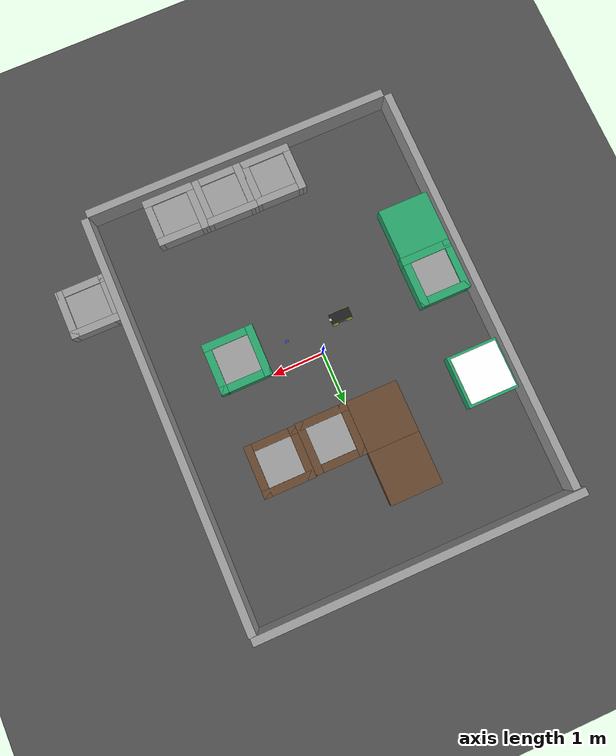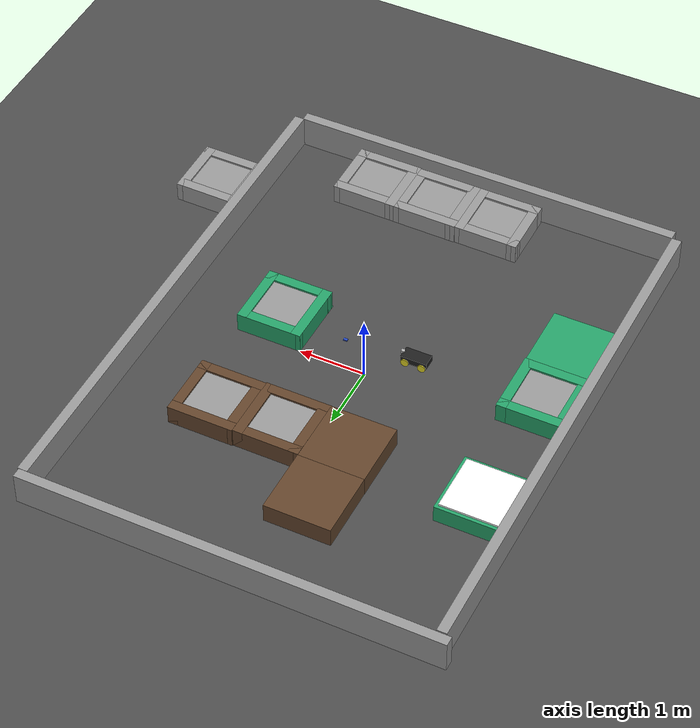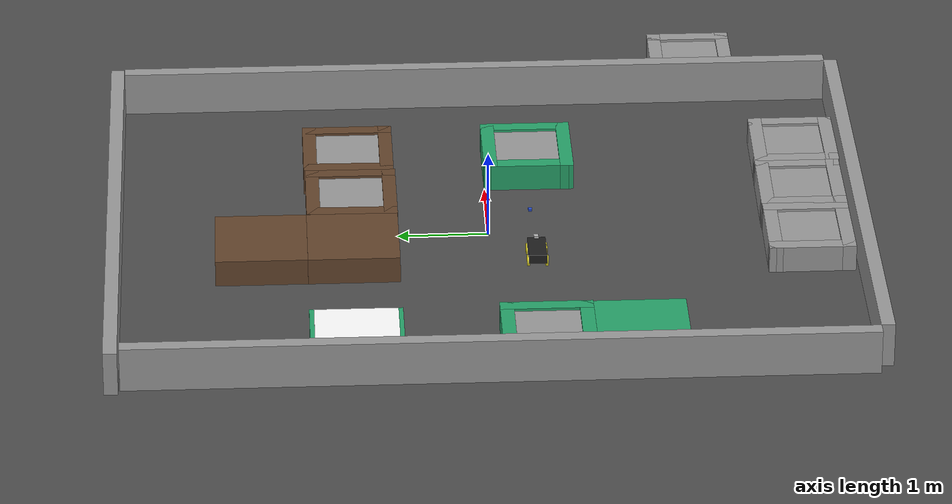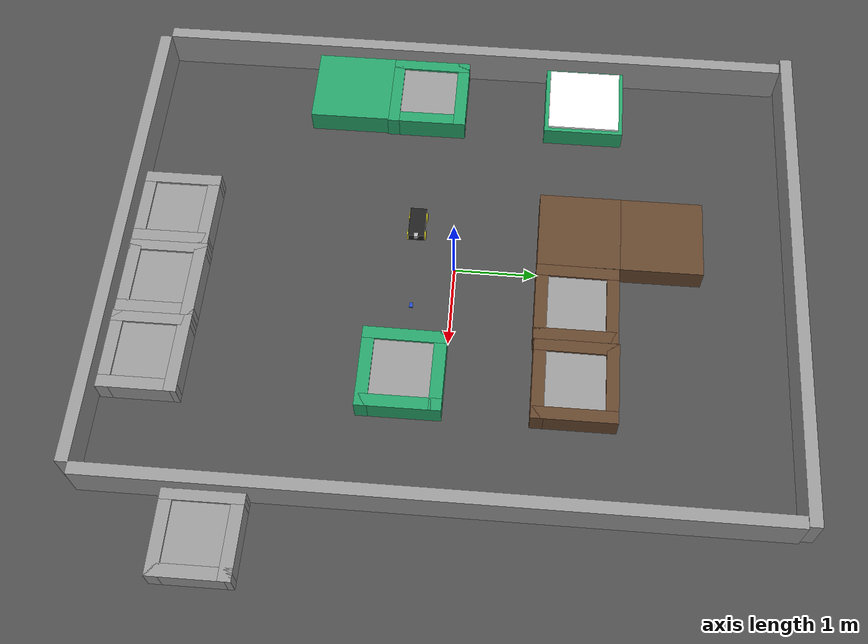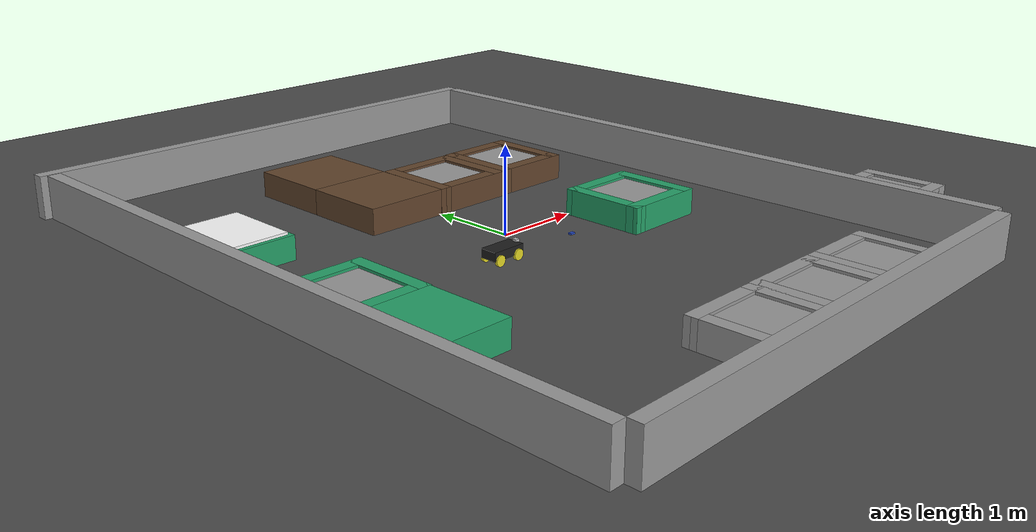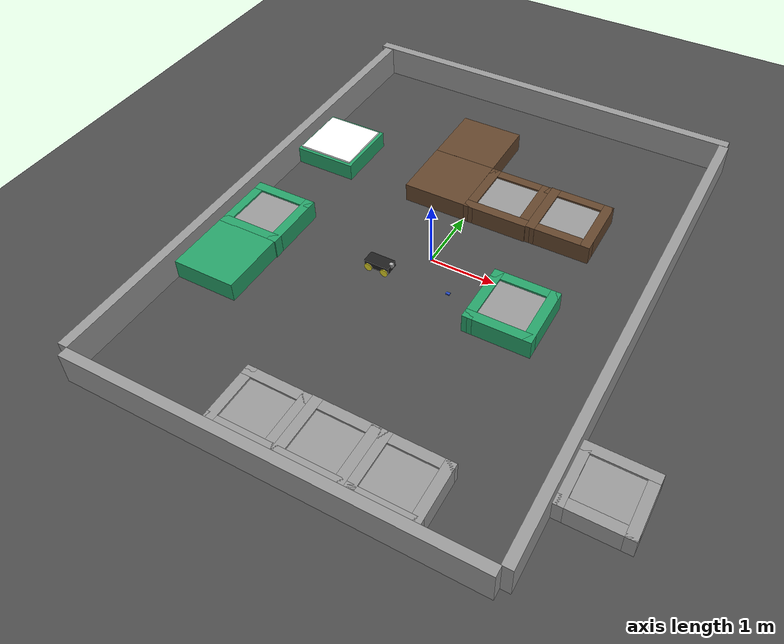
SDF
<sdf version="1.7">
 <world name="default">
  <model name="ground_plane">
   <static>1</static>
   <link name="link">
    <collision name="collision">
     <geometry><plane><normal>0 0 1</normal><size>100 100</size></plane></geometry>
    </collision>
    <visual name="visual">
     <cast_shadows>0</cast_shadows>
     <geometry><plane><normal>0 0 1</normal><size>100 100</size></plane></geometry>
     <material>
      <script><uri>file://media/materials/scripts/gazebo.material</uri><name>Gazebo/DarkGray</name></script>
     </material>
    </visual>
   </link>
  </model>
  <model name="RoverCamera">
   <frame name="rover::__model__" attached_to="rover::chassis">
    <pose relative_to="__model__">0 0 0 0 -0 0</pose>
   </frame>
   <static>0</static>
   <link name="rover::chassis">
    <inertial>
     <mass>2</mass>
     <inertia><ixx>1</ixx><ixy>0</ixy><ixz>0</ixz><iyy>1</iyy><iyz>0</iyz><izz>1</izz></inertia>
    </inertial>
    <collision name="collision"><geometry><box><size>0.4 0.2 0.1</size></box></geometry></collision>
    <visual name="visual">
     <geometry><box><size>0.4 0.2 0.1</size></box></geometry>
     <material>
      <script><uri>file://media/materials/scripts/gazebo.material</uri><name>Gazebo/FlatBlack</name></script>
     </material>
    </visual>
    <pose relative_to="rover::__model__">0 0 0 0 -0 0</pose>
   </link>
   <link name="rover::left_wheel">
    <pose relative_to="rover::__model__">0.13 0.1 -0.05 1.57 -0 0</pose>
    <inertial>
     <mass>0.2</mass>
     <inertia><ixx>1</ixx><ixy>0</ixy><ixz>0</ixz><iyy>1</iyy><iyz>0</iyz><izz>1</izz></inertia>
    </inertial>
    <collision name="collision">
     <geometry><cylinder><radius>0.06</radius><length>0.03</length></cylinder></geometry>
    </collision>
    <visual name="visual">
     <geometry><cylinder><radius>0.06</radius><length>0.03</length></cylinder></geometry>
     <material>
      <script><uri>file://media/materials/scripts/gazebo.material</uri><name>Gazebo/DarkYellow</name></script>
     </material>
    </visual>
   </link>
   <link name="rover::left_wheel2">
    <pose relative_to="rover::__model__">-0.13 0.1 -0.05 1.57 -0 0</pose>
    <inertial>
     <mass>0.2</mass>
     <inertia><ixx>1</ixx><ixy>0</ixy><ixz>0</ixz><iyy>1</iyy><iyz>0</iyz><izz>1</izz></inertia>
    </inertial>
    <collision name="collision">
     <geometry><cylinder><radius>0.06</radius><length>0.03</length></cylinder></geometry>
    </collision>
    <visual name="visual">
     <geometry><cylinder><radius>0.06</radius><length>0.03</length></cylinder></geometry>
     <material>
      <script><uri>file://media/materials/scripts/gazebo.material</uri><name>Gazebo/DarkYellow</name></script>
     </material>
    </visual>
   </link>
   <link name="rover::right_wheel">
    <pose relative_to="rover::__model__">0.13 -0.1 -0.05 1.57 -0 0</pose>
    <inertial>
     <mass>0.2</mass>
     <inertia><ixx>1</ixx><ixy>0</ixy><ixz>0</ixz><iyy>1</iyy><iyz>0</iyz><izz>1</izz></inertia>
    </inertial>
    <collision name="collision">
     <geometry><cylinder><radius>0.06</radius><length>0.03</length></cylinder></geometry>
    </collision>
    <visual name="visual">
     <geometry><cylinder><radius>0.06</radius><length>0.03</length></cylinder></geometry>
     <material>
      <script><uri>file://media/materials/scripts/gazebo.material</uri><name>Gazebo/DarkYellow</name></script>
     </material>
    </visual>
   </link>
   <link name="rover::right_wheel2">
    <pose relative_to="rover::__model__">-0.13 -0.1 -0.05 1.57 -0 0</pose>
    <inertial>
     <mass>0.2</mass>
     <inertia><ixx>1</ixx><ixy>0</ixy><ixz>0</ixz><iyy>1</iyy><iyz>0</iyz><izz>1</izz></inertia>
    </inertial>
    <collision name="collision">
     <geometry><cylinder><radius>0.06</radius><length>0.03</length></cylinder></geometry>
    </collision>
    <visual name="visual">
     <geometry><cylinder><radius>0.06</radius><length>0.03</length></cylinder></geometry>
     <material>
      <script><uri>file://media/materials/scripts/gazebo.material</uri><name>Gazebo/DarkYellow</name></script>
     </material>
    </visual>
   </link>
   <joint name="rover::left_wheel_hinge" type="revolute">
    <child>rover::left_wheel</child>
    <parent>rover::chassis</parent>
    <axis>
     <xyz>0 0 1</xyz>
     <limit><lower>-1e+16</lower><upper>1e+16</upper></limit>
     <dynamics><spring_reference>0</spring_reference><spring_stiffness>0</spring_stiffness></dynamics>
    </axis>
   </joint>
   <joint name="rover::left_wheel_hinge2" type="revolute">
    <child>rover::left_wheel2</child>
    <parent>rover::chassis</parent>
    <axis>
     <xyz>0 0 1</xyz>
     <limit><lower>-1e+16</lower><upper>1e+16</upper></limit>
     <dynamics><spring_reference>0</spring_reference><spring_stiffness>0</spring_stiffness></dynamics>
    </axis>
   </joint>
   <joint name="rover::right_wheel_hinge" type="revolute">
    <child>rover::right_wheel</child>
    <parent>rover::chassis</parent>
    <axis>
     <xyz>0 0 1</xyz>
     <limit><lower>-1e+16</lower><upper>1e+16</upper></limit>
     <dynamics><spring_reference>0</spring_reference><spring_stiffness>0</spring_stiffness></dynamics>
    </axis>
   </joint>
   <joint name="rover::right_wheel_hinge2" type="revolute">
    <child>rover::right_wheel2</child>
    <parent>rover::chassis</parent>
    <axis>
     <xyz>0 0 1</xyz>
     <limit><lower>-1e+16</lower><upper>1e+16</upper></limit>
     <dynamics><spring_reference>0</spring_reference><spring_stiffness>0</spring_stiffness></dynamics>
    </axis>
   </joint>
   <plugin name="object_controller" filename="libgazebo_ros_planar_move.so">
    <ros><namespace>/robot</namespace></ros>
    <odometryTopic>odom</odometryTopic>
    <odometryFrame>odom</odometryFrame>
    <odometryRate>20.0</odometryRate>
    <robotBaseFrame>base_footprint</robotBaseFrame>
   </plugin>
   <frame name="camera::__model__" attached_to="camera::cameralink">
    <pose relative_to="__model__">0.2 0 0.05 0 -0 0</pose>
   </frame>
   <static>0</static>
   <link name="camera::cameralink">
    <inertial>
     <mass>0.2</mass>
     <inertia><ixx>1</ixx><ixy>0</ixy><ixz>0</ixz><iyy>1</iyy><iyz>0</iyz><izz>1</izz></inertia>
    </inertial>
    <collision name="collision"><geometry><box><size>0.05 0.05 0.05</size></box></geometry></collision>
    <visual name="visual"><geometry><box><size>0.05 0.05 0.05</size></box></geometry></visual>
    <sensor name="camera1" type="camera">
     <visualize>1</visualize>
     <update_rate>30</update_rate>
     <camera name="head">
      <horizontal_fov>1.39626</horizontal_fov>
      <image><width>640</width><height>480</height><format>R8G8B8</format></image>
      <clip><near>0.02</near><far>300</far></clip>
      <noise><type>gaussian</type><mean>0</mean><stddev>0.007</stddev></noise>
     </camera>
     <plugin name="camera_controller" filename="libgazebo_ros_camera.so">
      <alwaysOn>1</alwaysOn>
      <updateRate>0.0</updateRate>
      <cameraName>rrbot/camera1</cameraName>
      <imageTopicName>image_raw</imageTopicName>
      <cameraInfoTopicName>camera_info</cameraInfoTopicName>
      <frameName>camera_link</frameName>
      <hackBaseline>0.07</hackBaseline>
      <distortionK1>0.0</distortionK1>
      <distortionK2>0.0</distortionK2>
      <distortionK3>0.0</distortionK3>
      <distortionT1>0.0</distortionT1>
      <distortionT2>0.0</distortionT2>
     </plugin>
    </sensor>
    <pose relative_to="camera::__model__">0 0 0 0 -0 0</pose>
   </link>
   <joint name="camera_joint" type="fixed">
    <child>camera::cameralink</child>
    <parent>rover::chassis</parent>
   </joint>
   <pose>-0.569656 -0.50282 0.110012 7e-06 8e-06 -0.000897</pose>
  </model>
  <model name="blue_box">
   <link name="link">
    <collision name="collision"><geometry><box><size>0.06 0.04 0.02</size></box></geometry></collision>
    <visual name="visual">
     <geometry><box><size>0.06 0.04 0.02</size></box></geometry>
     <material>
      <script><uri>file://media/materials/scripts/gazebo.material</uri><name>Gazebo/Blue</name></script>
     </material>
    </visual>
    <inertial>
     <inertia><ixx>1</ixx><ixy>0</ixy><ixz>0</ixz><iyy>1</iyy><iyz>0</iyz><izz>1</izz></inertia>
     <mass>1</mass>
    </inertial>
   </link>
   <plugin name="planar_move" filename="libgazebo_ros_planar_move.so">
    <ros>
     <namespace>/bluebox</namespace>
     <argument>cmd_vel:=cmd_vel</argument>
     <argument>odom:=odom_demo</argument>
    </ros>
    <update_rate>100</update_rate>
    <publish_rate>10</publish_rate>
    <publish_odom>0</publish_odom>
    <publish_odom_tf>0</publish_odom_tf>
    <odometry_frame>odom_demo</odometry_frame>
    <robot_base_frame>link</robot_base_frame>
    <covariance_x>0.0001</covariance_x>
    <covariance_y>0.0001</covariance_y>
    <covariance_yaw>0.01</covariance_yaw>
   </plugin>
   <pose>0.525775 -0.484983 0.01 4e-06 1e-06 -3e-06</pose>
  </model>
  <light name="sun" type="directional">
   <pose>0 0 3.5 0 -0 0</pose>
   <diffuse>0.25 0.25 0.25 1</diffuse>
   <direction>0 0 -1</direction>
   <attenuation><range>10</range></attenuation>
   <spot><inner_angle>0</inner_angle><outer_angle>0</outer_angle><falloff>0</falloff></spot>
  </light>
  <light name="user_point_light_0" type="point">
   <pose>0 0 3 0 -0 0</pose>
   <attenuation><linear>0.1</linear><range>10</range></attenuation>
   <cast_shadows>0</cast_shadows>
   <direction>0 0 -1</direction>
   <spot><inner_angle>0</inner_angle><outer_angle>0</outer_angle><falloff>0</falloff></spot>
  </light>
  <gravity>0 0 -9.8</gravity>
  <magnetic_field>6e-06 2.3e-05 -4.2e-05</magnetic_field>
  <atmosphere type="adiabatic"/>
  <physics type="ode">
   <max_step_size>0.001</max_step_size>
   <real_time_factor>1</real_time_factor>
   <real_time_update_rate>1000</real_time_update_rate>
  </physics>
  <scene><ambient>0.4 0.4 0.4 1</ambient><background>0.7 0.7 0.7 1</background><shadows>1</shadows></scene>
  <audio><device>default</device></audio>
  <spherical_coordinates>
   <surface_model>EARTH_WGS84</surface_model>
   <latitude_deg>0</latitude_deg>
   <longitude_deg>0</longitude_deg>
   <elevation>0</elevation>
   <heading_deg>0</heading_deg>
  </spherical_coordinates>
  <model name="brownBox">
   <pose>-0.496777 1.50015 0 0 -0 0</pose>
   <link name="Wall_0">
    <collision name="Wall_0_Collision">
     <geometry><box><size>1 1 0.3</size></box></geometry>
     <pose>0 0 0.15 0 -0 0</pose>
    </collision>
    <visual name="Wall_0_Visual">
     <pose>0 0 0.15 0 -0 0</pose>
     <geometry><box><size>1 1 0.3</size></box></geometry>
     <material>
      <script><uri>file://media/materials/scripts/gazebo.material</uri><name>Gazebo/Grey</name></script>
      <ambient>0.388235 0.270588 0.172549 1</ambient>
     </material>
     <meta><layer>0</layer></meta>
    </visual>
   </link>
   <static>1</static>
  </model>
  <model name="brownBox_0">
   <pose>-0.495213 2.50026 0 0 -0 0</pose>
   <link name="Wall_0">
    <collision name="Wall_0_Collision">
     <geometry><box><size>1 1 0.3</size></box></geometry>
     <pose>0 0 0.15 0 -0 0</pose>
    </collision>
    <visual name="Wall_0_Visual">
     <pose>0 0 0.15 0 -0 0</pose>
     <geometry><box><size>1 1 0.3</size></box></geometry>
     <material>
      <script><uri>file://media/materials/scripts/gazebo.material</uri><name>Gazebo/Grey</name></script>
      <ambient>0.388235 0.270588 0.172549 1</ambient>
     </material>
     <meta><layer>0</layer></meta>
    </visual>
   </link>
   <static>1</static>
  </model>
  <model name="brownBoxIsae">
   <pose>0.501682 1.49551 0 0 -0 0</pose>
   <link name="Wall_0">
    <collision name="Wall_0_Collision">
     <geometry><box><size>0.75 0.75 0.27</size></box></geometry>
     <pose>0 0 0.135 0 -0 0</pose>
    </collision>
    <visual name="Wall_0_Visual">
     <pose>0 0 0.135 0 -0 0</pose>
     <geometry><box><size>0.75 0.75 0.27</size></box></geometry>
     <material>
      <script><uri>file://media/materials/scripts/gazebo.material</uri><name>Gazebo/Grey</name></script>
      <ambient>1 1 1 1</ambient>
     </material>
     <meta><layer>0</layer></meta>
    </visual>
    <pose>0.005242 -0.002 0 0 -0 0</pose>
   </link>
   <link name="Wall_2">
    <collision name="Wall_2_Collision">
     <geometry><box><size>1 0.15 0.3</size></box></geometry>
     <pose>0 0 0.15 0 -0 0</pose>
    </collision>
    <visual name="Wall_2_Visual">
     <pose>0 0 0.15 0 -0 0</pose>
     <geometry><box><size>1 0.15 0.3</size></box></geometry>
     <material>
      <script><uri>file://media/materials/scripts/gazebo.material</uri><name>Gazebo/Grey</name></script>
      <ambient>0.388235 0.270588 0.172549 1</ambient>
     </material>
     <meta><layer>0</layer></meta>
    </visual>
    <pose>0.004242 0.425 0 0 -0 0</pose>
   </link>
   <link name="Wall_3">
    <collision name="Wall_3_Collision">
     <geometry><box><size>1 0.15 0.3</size></box></geometry>
     <pose>0 0 0.15 0 -0 0</pose>
    </collision>
    <visual name="Wall_3_Visual">
     <pose>0 0 0.15 0 -0 0</pose>
     <geometry><box><size>1 0.15 0.3</size></box></geometry>
     <material>
      <script><uri>file://media/materials/scripts/gazebo.material</uri><name>Gazebo/Grey</name></script>
      <ambient>0.388235 0.270588 0.172549 1</ambient>
     </material>
     <meta><layer>0</layer></meta>
    </visual>
    <pose>0.429242 0 0 0 -0 -1.5708</pose>
   </link>
   <link name="Wall_4">
    <collision name="Wall_4_Collision">
     <geometry><box><size>1.00844 0.15 0.3</size></box></geometry>
     <pose>0 0 0.15 0 -0 0</pose>
    </collision>
    <visual name="Wall_4_Visual">
     <pose>0 0 0.15 0 -0 0</pose>
     <geometry><box><size>1.00844 0.15 0.3</size></box></geometry>
     <material>
      <script><uri>file://media/materials/scripts/gazebo.material</uri><name>Gazebo/Grey</name></script>
      <ambient>0.388235 0.270588 0.172549 1</ambient>
     </material>
     <meta><layer>0</layer></meta>
    </visual>
    <pose>0.000242 -0.425 0 0 -0 3.14159</pose>
   </link>
   <link name="Wall_5">
    <collision name="Wall_5_Collision">
     <geometry><box><size>1 0.15 0.3</size></box></geometry>
     <pose>0 0 0.15 0 -0 0</pose>
    </collision>
    <visual name="Wall_5_Visual">
     <pose>0 0 0.15 0 -0 0</pose>
     <geometry><box><size>1 0.15 0.3</size></box></geometry>
     <material>
      <script><uri>file://media/materials/scripts/gazebo.material</uri><name>Gazebo/Grey</name></script>
      <ambient>0.388235 0.270588 0.172549 1</ambient>
     </material>
     <meta><layer>0</layer></meta>
    </visual>
    <pose>-0.424758 0 0 0 -0 1.56139</pose>
   </link>
   <static>1</static>
  </model>
  <model name="brownBoxIsae_0">
   <pose>1.50264 1.50921 0 0 -0 0</pose>
   <link name="Wall_0">
    <collision name="Wall_0_Collision">
     <geometry><box><size>0.75 0.75 0.27</size></box></geometry>
     <pose>0 0 0.135 0 -0 0</pose>
    </collision>
    <visual name="Wall_0_Visual">
     <pose>0 0 0.135 0 -0 0</pose>
     <geometry><box><size>0.75 0.75 0.27</size></box></geometry>
     <material>
      <script><uri>file://media/materials/scripts/gazebo.material</uri><name>Gazebo/Grey</name></script>
      <ambient>1 1 1 1</ambient>
     </material>
     <meta><layer>0</layer></meta>
    </visual>
    <pose>0.005242 -0.002 0 0 -0 0</pose>
   </link>
   <link name="Wall_2">
    <collision name="Wall_2_Collision">
     <geometry><box><size>1 0.15 0.3</size></box></geometry>
     <pose>0 0 0.15 0 -0 0</pose>
    </collision>
    <visual name="Wall_2_Visual">
     <pose>0 0 0.15 0 -0 0</pose>
     <geometry><box><size>1 0.15 0.3</size></box></geometry>
     <material>
      <script><uri>file://media/materials/scripts/gazebo.material</uri><name>Gazebo/Grey</name></script>
      <ambient>0.388235 0.270588 0.172549 1</ambient>
     </material>
     <meta><layer>0</layer></meta>
    </visual>
    <pose>0.004242 0.425 0 0 -0 0</pose>
   </link>
   <link name="Wall_3">
    <collision name="Wall_3_Collision">
     <geometry><box><size>1 0.15 0.3</size></box></geometry>
     <pose>0 0 0.15 0 -0 0</pose>
    </collision>
    <visual name="Wall_3_Visual">
     <pose>0 0 0.15 0 -0 0</pose>
     <geometry><box><size>1 0.15 0.3</size></box></geometry>
     <material>
      <script><uri>file://media/materials/scripts/gazebo.material</uri><name>Gazebo/Grey</name></script>
      <ambient>0.388235 0.270588 0.172549 1</ambient>
     </material>
     <meta><layer>0</layer></meta>
    </visual>
    <pose>0.429242 0 0 0 -0 -1.5708</pose>
   </link>
   <link name="Wall_4">
    <collision name="Wall_4_Collision">
     <geometry><box><size>1.00844 0.15 0.3</size></box></geometry>
     <pose>0 0 0.15 0 -0 0</pose>
    </collision>
    <visual name="Wall_4_Visual">
     <pose>0 0 0.15 0 -0 0</pose>
     <geometry><box><size>1.00844 0.15 0.3</size></box></geometry>
     <material>
      <script><uri>file://media/materials/scripts/gazebo.material</uri><name>Gazebo/Grey</name></script>
      <ambient>0.388235 0.270588 0.172549 1</ambient>
     </material>
     <meta><layer>0</layer></meta>
    </visual>
    <pose>0.000242 -0.425 0 0 -0 3.14159</pose>
   </link>
   <link name="Wall_5">
    <collision name="Wall_5_Collision">
     <geometry><box><size>1 0.15 0.3</size></box></geometry>
     <pose>0 0 0.15 0 -0 0</pose>
    </collision>
    <visual name="Wall_5_Visual">
     <pose>0 0 0.15 0 -0 0</pose>
     <geometry><box><size>1 0.15 0.3</size></box></geometry>
     <material>
      <script><uri>file://media/materials/scripts/gazebo.material</uri><name>Gazebo/Grey</name></script>
      <ambient>0.388235 0.270588 0.172549 1</ambient>
     </material>
     <meta><layer>0</layer></meta>
    </visual>
    <pose>-0.424758 0 0 0 -0 1.56139</pose>
   </link>
   <static>1</static>
  </model>
  <model name="greenBox">
   <pose>-2.51546 -1.51202 0 0 -0 0</pose>
   <link name="Wall_0">
    <collision name="Wall_0_Collision">
     <geometry><box><size>1 1 0.3</size></box></geometry>
     <pose>0 0 0.15 0 -0 0</pose>
    </collision>
    <visual name="Wall_0_Visual">
     <pose>0 0 0.15 0 -0 0</pose>
     <geometry><box><size>1 1 0.3</size></box></geometry>
     <material>
      <script><uri>file://media/materials/scripts/gazebo.material</uri><name>Gazebo/Grey</name></script>
      <ambient>0.14902 0.635294 0.411765 1</ambient>
     </material>
     <meta><layer>0</layer></meta>
    </visual>
   </link>
   <static>1</static>
  </model>
  <model name="greenBoxIsae">
   <pose>-2.50476 -0.520853 0 0 -0 0</pose>
   <link name="Wall_0">
    <collision name="Wall_0_Collision">
     <geometry><box><size>0.75 0.75 0.27</size></box></geometry>
     <pose>0 0 0.135 0 -0 0</pose>
    </collision>
    <visual name="Wall_0_Visual">
     <pose>0 0 0.135 0 -0 0</pose>
     <geometry><box><size>0.75 0.75 0.27</size></box></geometry>
     <material>
      <script><uri>file://media/materials/scripts/gazebo.material</uri><name>Gazebo/Grey</name></script>
      <ambient>1 1 1 1</ambient>
     </material>
     <meta><layer>0</layer></meta>
    </visual>
    <pose>0.005242 -0.002 0 0 -0 0</pose>
   </link>
   <link name="Wall_2">
    <collision name="Wall_2_Collision">
     <geometry><box><size>1 0.15 0.3</size></box></geometry>
     <pose>0 0 0.15 0 -0 0</pose>
    </collision>
    <visual name="Wall_2_Visual">
     <pose>0 0 0.15 0 -0 0</pose>
     <geometry><box><size>1 0.15 0.3</size></box></geometry>
     <material>
      <script><uri>file://media/materials/scripts/gazebo.material</uri><name>Gazebo/Grey</name></script>
      <ambient>0.14902 0.635294 0.411765 1</ambient>
     </material>
     <meta><layer>0</layer></meta>
    </visual>
    <pose>0.004242 0.425 0 0 -0 0</pose>
   </link>
   <link name="Wall_3">
    <collision name="Wall_3_Collision">
     <geometry><box><size>1 0.15 0.3</size></box></geometry>
     <pose>0 0 0.15 0 -0 0</pose>
    </collision>
    <visual name="Wall_3_Visual">
     <pose>0 0 0.15 0 -0 0</pose>
     <geometry><box><size>1 0.15 0.3</size></box></geometry>
     <material>
      <script><uri>file://media/materials/scripts/gazebo.material</uri><name>Gazebo/Grey</name></script>
      <ambient>0.14902 0.635294 0.411765 1</ambient>
     </material>
     <meta><layer>0</layer></meta>
    </visual>
    <pose>0.429242 0 0 0 -0 -1.5708</pose>
   </link>
   <link name="Wall_4">
    <collision name="Wall_4_Collision">
     <geometry><box><size>1.00844 0.15 0.3</size></box></geometry>
     <pose>0 0 0.15 0 -0 0</pose>
    </collision>
    <visual name="Wall_4_Visual">
     <pose>0 0 0.15 0 -0 0</pose>
     <geometry><box><size>1.00844 0.15 0.3</size></box></geometry>
     <material>
      <script><uri>file://media/materials/scripts/gazebo.material</uri><name>Gazebo/Grey</name></script>
      <ambient>0.14902 0.635294 0.411765 1</ambient>
     </material>
     <meta><layer>0</layer></meta>
    </visual>
    <pose>0.000242 -0.425 0 0 -0 3.14159</pose>
   </link>
   <link name="Wall_5">
    <collision name="Wall_5_Collision">
     <geometry><box><size>1 0.15 0.3</size></box></geometry>
     <pose>0 0 0.15 0 -0 0</pose>
    </collision>
    <visual name="Wall_5_Visual">
     <pose>0 0 0.15 0 -0 0</pose>
     <geometry><box><size>1 0.15 0.3</size></box></geometry>
     <material>
      <script><uri>file://media/materials/scripts/gazebo.material</uri><name>Gazebo/Grey</name></script>
      <ambient>0.14902 0.635294 0.411765 1</ambient>
     </material>
     <meta><layer>0</layer></meta>
    </visual>
    <pose>-0.424758 0 0 0 -0 1.56139</pose>
   </link>
   <static>1</static>
  </model>
  <model name="helibox">
   <pose>-2.5112 1.50586 0 0 -0 0</pose>
   <link name="Wall_0">
    <collision name="Wall_0_Collision">
     <geometry><box><size>0.9 0.9 0.3</size></box></geometry>
     <pose>0 0 0.15 0 -0 0</pose>
    </collision>
    <visual name="Wall_0_Visual">
     <pose>0 0 0.15 0 -0 0</pose>
     <geometry><box><size>0.9 0.9 0.3</size></box></geometry>
     <material>
      <script>
       <uri>model://helibox/materials/scripts</uri>
       <uri>model://helibox/materials/textures</uri>
       <name>RepeatedTexture</name>
      </script>
      <ambient>1 1 1 1</ambient>
     </material>
     <meta><layer>0</layer></meta>
    </visual>
   </link>
   <link name="Wall_2">
    <collision name="Wall_2_Collision">
     <geometry><box><size>1 1 0.27</size></box></geometry>
     <pose>0 0 0.135 0 -0 0</pose>
    </collision>
    <visual name="Wall_2_Visual">
     <pose>0 0 0.135 0 -0 0</pose>
     <geometry><box><size>1 1 0.27</size></box></geometry>
     <material>
      <script><uri>file://media/materials/scripts/gazebo.material</uri><name>Gazebo/Grey</name></script>
      <ambient>0.14902 0.635294 0.411765 1</ambient>
     </material>
     <meta><layer>0</layer></meta>
    </visual>
   </link>
   <static>1</static>
  </model>
  <model name="greenBoxIsae_0">
   <pose>1.49712 -0.496949 0 0 -0 0</pose>
   <link name="Wall_0">
    <collision name="Wall_0_Collision">
     <geometry><box><size>0.75 0.75 0.27</size></box></geometry>
     <pose>0 0 0.135 0 -0 0</pose>
    </collision>
    <visual name="Wall_0_Visual">
     <pose>0 0 0.135 0 -0 0</pose>
     <geometry><box><size>0.75 0.75 0.27</size></box></geometry>
     <material>
      <script><uri>file://media/materials/scripts/gazebo.material</uri><name>Gazebo/Grey</name></script>
      <ambient>1 1 1 1</ambient>
     </material>
     <meta><layer>0</layer></meta>
    </visual>
    <pose>0.005242 -0.002 0 0 -0 0</pose>
   </link>
   <link name="Wall_2">
    <collision name="Wall_2_Collision">
     <geometry><box><size>1 0.15 0.3</size></box></geometry>
     <pose>0 0 0.15 0 -0 0</pose>
    </collision>
    <visual name="Wall_2_Visual">
     <pose>0 0 0.15 0 -0 0</pose>
     <geometry><box><size>1 0.15 0.3</size></box></geometry>
     <material>
      <script><uri>file://media/materials/scripts/gazebo.material</uri><name>Gazebo/Grey</name></script>
      <ambient>0.14902 0.635294 0.411765 1</ambient>
     </material>
     <meta><layer>0</layer></meta>
    </visual>
    <pose>0.004242 0.425 0 0 -0 0</pose>
   </link>
   <link name="Wall_3">
    <collision name="Wall_3_Collision">
     <geometry><box><size>1 0.15 0.3</size></box></geometry>
     <pose>0 0 0.15 0 -0 0</pose>
    </collision>
    <visual name="Wall_3_Visual">
     <pose>0 0 0.15 0 -0 0</pose>
     <geometry><box><size>1 0.15 0.3</size></box></geometry>
     <material>
      <script><uri>file://media/materials/scripts/gazebo.material</uri><name>Gazebo/Grey</name></script>
      <ambient>0.14902 0.635294 0.411765 1</ambient>
     </material>
     <meta><layer>0</layer></meta>
    </visual>
    <pose>0.429242 0 0 0 -0 -1.5708</pose>
   </link>
   <link name="Wall_4">
    <collision name="Wall_4_Collision">
     <geometry><box><size>1.00844 0.15 0.3</size></box></geometry>
     <pose>0 0 0.15 0 -0 0</pose>
    </collision>
    <visual name="Wall_4_Visual">
     <pose>0 0 0.15 0 -0 0</pose>
     <geometry><box><size>1.00844 0.15 0.3</size></box></geometry>
     <material>
      <script><uri>file://media/materials/scripts/gazebo.material</uri><name>Gazebo/Grey</name></script>
      <ambient>0.14902 0.635294 0.411765 1</ambient>
     </material>
     <meta><layer>0</layer></meta>
    </visual>
    <pose>0.000242 -0.425 0 0 -0 3.14159</pose>
   </link>
   <link name="Wall_5">
    <collision name="Wall_5_Collision">
     <geometry><box><size>1 0.15 0.3</size></box></geometry>
     <pose>0 0 0.15 0 -0 0</pose>
    </collision>
    <visual name="Wall_5_Visual">
     <pose>0 0 0.15 0 -0 0</pose>
     <geometry><box><size>1 0.15 0.3</size></box></geometry>
     <material>
      <script><uri>file://media/materials/scripts/gazebo.material</uri><name>Gazebo/Grey</name></script>
      <ambient>0.14902 0.635294 0.411765 1</ambient>
     </material>
     <meta><layer>0</layer></meta>
    </visual>
    <pose>-0.424758 0 0 0 -0 1.56139</pose>
   </link>
   <static>1</static>
  </model>
  <model name="greyBoxIsae">
   <pose>3.61381 -2.50208 0 0 -0 0</pose>
   <link name="Wall_0">
    <collision name="Wall_0_Collision">
     <geometry><box><size>0.75 0.75 0.27</size></box></geometry>
     <pose>0 0 0.135 0 -0 0</pose>
    </collision>
    <visual name="Wall_0_Visual">
     <pose>0 0 0.135 0 -0 0</pose>
     <geometry><box><size>0.75 0.75 0.27</size></box></geometry>
     <material>
      <script><uri>file://media/materials/scripts/gazebo.material</uri><name>Gazebo/Grey</name></script>
      <ambient>1 1 1 1</ambient>
     </material>
     <meta><layer>0</layer></meta>
    </visual>
    <pose>0.012 -0.047314 0 0 -0 0</pose>
   </link>
   <link name="Wall_10">
    <collision name="Wall_10_Collision">
     <geometry><box><size>0.948 0.15 0.3</size></box></geometry>
     <pose>0 0 0.15 0 -0 0</pose>
    </collision>
    <visual name="Wall_10_Visual">
     <pose>0 0 0.15 0 -0 0</pose>
     <geometry><box><size>0.948 0.15 0.3</size></box></geometry>
     <material>
      <script><uri>file://media/materials/scripts/gazebo.material</uri><name>Gazebo/Grey</name></script>
      <ambient>0.298039 0.298039 0.298039 1</ambient>
     </material>
     <meta><layer>0</layer></meta>
    </visual>
    <pose>-0.425 -0.000314 0 0 -0 1.5708</pose>
   </link>
   <link name="Wall_7">
    <collision name="Wall_7_Collision">
     <geometry><box><size>1 0.15 0.3</size></box></geometry>
     <pose>0 0 0.15 0 -0 0</pose>
    </collision>
    <visual name="Wall_7_Visual">
     <pose>0 0 0.15 0 -0 0</pose>
     <geometry><box><size>1 0.15 0.3</size></box></geometry>
     <material>
      <script><uri>file://media/materials/scripts/gazebo.material</uri><name>Gazebo/Grey</name></script>
      <ambient>0.298039 0.298039 0.298039 1</ambient>
     </material>
     <meta><layer>0</layer></meta>
    </visual>
    <pose>0 0.394186 0 0 -0 -0.010588</pose>
   </link>
   <link name="Wall_8">
    <collision name="Wall_8_Collision">
     <geometry><box><size>0.939322 0.15 0.3</size></box></geometry>
     <pose>0 0 0.15 0 -0 0</pose>
    </collision>
    <visual name="Wall_8_Visual">
     <pose>0 0 0.15 0 -0 0</pose>
     <geometry><box><size>0.939322 0.15 0.3</size></box></geometry>
     <material>
      <script><uri>file://media/materials/scripts/gazebo.material</uri><name>Gazebo/Grey</name></script>
      <ambient>0.298039 0.298039 0.298039 1</ambient>
     </material>
     <meta><layer>0</layer></meta>
    </visual>
    <pose>0.425 -0.004814 0 0 -0 -1.5708</pose>
   </link>
   <link name="Wall_9">
    <collision name="Wall_9_Collision">
     <geometry><box><size>1 0.15 0.3</size></box></geometry>
     <pose>0 0 0.15 0 -0 0</pose>
    </collision>
    <visual name="Wall_9_Visual">
     <pose>0 0 0.15 0 -0 0</pose>
     <geometry><box><size>1 0.15 0.3</size></box></geometry>
     <material>
      <script><uri>file://media/materials/scripts/gazebo.material</uri><name>Gazebo/Grey</name></script>
      <ambient>0.298039 0.298039 0.298039 1</ambient>
     </material>
     <meta><layer>0</layer></meta>
    </visual>
    <pose>0 -0.399314 0 0 -0 3.14159</pose>
   </link>
   <static>1</static>
  </model>
  <model name="greyBoxIsae_0">
   <pose>1.49486 -3.4926 0 0 -0 0</pose>
   <link name="Wall_0">
    <collision name="Wall_0_Collision">
     <geometry><box><size>0.75 0.75 0.27</size></box></geometry>
     <pose>0 0 0.135 0 -0 0</pose>
    </collision>
    <visual name="Wall_0_Visual">
     <pose>0 0 0.135 0 -0 0</pose>
     <geometry><box><size>0.75 0.75 0.27</size></box></geometry>
     <material>
      <script><uri>file://media/materials/scripts/gazebo.material</uri><name>Gazebo/Grey</name></script>
      <ambient>1 1 1 1</ambient>
     </material>
     <meta><layer>0</layer></meta>
    </visual>
    <pose>0.012 -0.047314 0 0 -0 0</pose>
   </link>
   <link name="Wall_10">
    <collision name="Wall_10_Collision">
     <geometry><box><size>0.948 0.15 0.3</size></box></geometry>
     <pose>0 0 0.15 0 -0 0</pose>
    </collision>
    <visual name="Wall_10_Visual">
     <pose>0 0 0.15 0 -0 0</pose>
     <geometry><box><size>0.948 0.15 0.3</size></box></geometry>
     <material>
      <script><uri>file://media/materials/scripts/gazebo.material</uri><name>Gazebo/Grey</name></script>
      <ambient>0.298039 0.298039 0.298039 1</ambient>
     </material>
     <meta><layer>0</layer></meta>
    </visual>
    <pose>-0.425 -0.000314 0 0 -0 1.5708</pose>
   </link>
   <link name="Wall_7">
    <collision name="Wall_7_Collision">
     <geometry><box><size>1 0.15 0.3</size></box></geometry>
     <pose>0 0 0.15 0 -0 0</pose>
    </collision>
    <visual name="Wall_7_Visual">
     <pose>0 0 0.15 0 -0 0</pose>
     <geometry><box><size>1 0.15 0.3</size></box></geometry>
     <material>
      <script><uri>file://media/materials/scripts/gazebo.material</uri><name>Gazebo/Grey</name></script>
      <ambient>0.298039 0.298039 0.298039 1</ambient>
     </material>
     <meta><layer>0</layer></meta>
    </visual>
    <pose>0 0.394186 0 0 -0 -0.010588</pose>
   </link>
   <link name="Wall_8">
    <collision name="Wall_8_Collision">
     <geometry><box><size>0.939322 0.15 0.3</size></box></geometry>
     <pose>0 0 0.15 0 -0 0</pose>
    </collision>
    <visual name="Wall_8_Visual">
     <pose>0 0 0.15 0 -0 0</pose>
     <geometry><box><size>0.939322 0.15 0.3</size></box></geometry>
     <material>
      <script><uri>file://media/materials/scripts/gazebo.material</uri><name>Gazebo/Grey</name></script>
      <ambient>0.298039 0.298039 0.298039 1</ambient>
     </material>
     <meta><layer>0</layer></meta>
    </visual>
    <pose>0.425 -0.004814 0 0 -0 -1.5708</pose>
   </link>
   <link name="Wall_9">
    <collision name="Wall_9_Collision">
     <geometry><box><size>1 0.15 0.3</size></box></geometry>
     <pose>0 0 0.15 0 -0 0</pose>
    </collision>
    <visual name="Wall_9_Visual">
     <pose>0 0 0.15 0 -0 0</pose>
     <geometry><box><size>1 0.15 0.3</size></box></geometry>
     <material>
      <script><uri>file://media/materials/scripts/gazebo.material</uri><name>Gazebo/Grey</name></script>
      <ambient>0.298039 0.298039 0.298039 1</ambient>
     </material>
     <meta><layer>0</layer></meta>
    </visual>
    <pose>0 -0.399314 0 0 -0 3.14159</pose>
   </link>
   <static>1</static>
  </model>
  <model name="greyBoxIsae_1">
   <pose>0.506472 -3.48025 0 0 -0 0</pose>
   <link name="Wall_0">
    <collision name="Wall_0_Collision">
     <geometry><box><size>0.75 0.75 0.27</size></box></geometry>
     <pose>0 0 0.135 0 -0 0</pose>
    </collision>
    <visual name="Wall_0_Visual">
     <pose>0 0 0.135 0 -0 0</pose>
     <geometry><box><size>0.75 0.75 0.27</size></box></geometry>
     <material>
      <script><uri>file://media/materials/scripts/gazebo.material</uri><name>Gazebo/Grey</name></script>
      <ambient>1 1 1 1</ambient>
     </material>
     <meta><layer>0</layer></meta>
    </visual>
    <pose>0.012 -0.047314 0 0 -0 0</pose>
   </link>
   <link name="Wall_10">
    <collision name="Wall_10_Collision">
     <geometry><box><size>0.948 0.15 0.3</size></box></geometry>
     <pose>0 0 0.15 0 -0 0</pose>
    </collision>
    <visual name="Wall_10_Visual">
     <pose>0 0 0.15 0 -0 0</pose>
     <geometry><box><size>0.948 0.15 0.3</size></box></geometry>
     <material>
      <script><uri>file://media/materials/scripts/gazebo.material</uri><name>Gazebo/Grey</name></script>
      <ambient>0.298039 0.298039 0.298039 1</ambient>
     </material>
     <meta><layer>0</layer></meta>
    </visual>
    <pose>-0.425 -0.000314 0 0 -0 1.5708</pose>
   </link>
   <link name="Wall_7">
    <collision name="Wall_7_Collision">
     <geometry><box><size>1 0.15 0.3</size></box></geometry>
     <pose>0 0 0.15 0 -0 0</pose>
    </collision>
    <visual name="Wall_7_Visual">
     <pose>0 0 0.15 0 -0 0</pose>
     <geometry><box><size>1 0.15 0.3</size></box></geometry>
     <material>
      <script><uri>file://media/materials/scripts/gazebo.material</uri><name>Gazebo/Grey</name></script>
      <ambient>0.298039 0.298039 0.298039 1</ambient>
     </material>
     <meta><layer>0</layer></meta>
    </visual>
    <pose>0 0.394186 0 0 -0 -0.010588</pose>
   </link>
   <link name="Wall_8">
    <collision name="Wall_8_Collision">
     <geometry><box><size>0.939322 0.15 0.3</size></box></geometry>
     <pose>0 0 0.15 0 -0 0</pose>
    </collision>
    <visual name="Wall_8_Visual">
     <pose>0 0 0.15 0 -0 0</pose>
     <geometry><box><size>0.939322 0.15 0.3</size></box></geometry>
     <material>
      <script><uri>file://media/materials/scripts/gazebo.material</uri><name>Gazebo/Grey</name></script>
      <ambient>0.298039 0.298039 0.298039 1</ambient>
     </material>
     <meta><layer>0</layer></meta>
    </visual>
    <pose>0.425 -0.004814 0 0 -0 -1.5708</pose>
   </link>
   <link name="Wall_9">
    <collision name="Wall_9_Collision">
     <geometry><box><size>1 0.15 0.3</size></box></geometry>
     <pose>0 0 0.15 0 -0 0</pose>
    </collision>
    <visual name="Wall_9_Visual">
     <pose>0 0 0.15 0 -0 0</pose>
     <geometry><box><size>1 0.15 0.3</size></box></geometry>
     <material>
      <script><uri>file://media/materials/scripts/gazebo.material</uri><name>Gazebo/Grey</name></script>
      <ambient>0.298039 0.298039 0.298039 1</ambient>
     </material>
     <meta><layer>0</layer></meta>
    </visual>
    <pose>0 -0.399314 0 0 -0 3.14159</pose>
   </link>
   <static>1</static>
  </model>
  <model name="greyBoxIsae_2">
   <pose>-0.476826 -3.47763 0 0 -0 0</pose>
   <link name="Wall_0">
    <collision name="Wall_0_Collision">
     <geometry><box><size>0.75 0.75 0.27</size></box></geometry>
     <pose>0 0 0.135 0 -0 0</pose>
    </collision>
    <visual name="Wall_0_Visual">
     <pose>0 0 0.135 0 -0 0</pose>
     <geometry><box><size>0.75 0.75 0.27</size></box></geometry>
     <material>
      <script><uri>file://media/materials/scripts/gazebo.material</uri><name>Gazebo/Grey</name></script>
      <ambient>1 1 1 1</ambient>
     </material>
     <meta><layer>0</layer></meta>
    </visual>
    <pose>0.012 -0.047314 0 0 -0 0</pose>
   </link>
   <link name="Wall_10">
    <collision name="Wall_10_Collision">
     <geometry><box><size>0.948 0.15 0.3</size></box></geometry>
     <pose>0 0 0.15 0 -0 0</pose>
    </collision>
    <visual name="Wall_10_Visual">
     <pose>0 0 0.15 0 -0 0</pose>
     <geometry><box><size>0.948 0.15 0.3</size></box></geometry>
     <material>
      <script><uri>file://media/materials/scripts/gazebo.material</uri><name>Gazebo/Grey</name></script>
      <ambient>0.298039 0.298039 0.298039 1</ambient>
     </material>
     <meta><layer>0</layer></meta>
    </visual>
    <pose>-0.425 -0.000314 0 0 -0 1.5708</pose>
   </link>
   <link name="Wall_7">
    <collision name="Wall_7_Collision">
     <geometry><box><size>1 0.15 0.3</size></box></geometry>
     <pose>0 0 0.15 0 -0 0</pose>
    </collision>
    <visual name="Wall_7_Visual">
     <pose>0 0 0.15 0 -0 0</pose>
     <geometry><box><size>1 0.15 0.3</size></box></geometry>
     <material>
      <script><uri>file://media/materials/scripts/gazebo.material</uri><name>Gazebo/Grey</name></script>
      <ambient>0.298039 0.298039 0.298039 1</ambient>
     </material>
     <meta><layer>0</layer></meta>
    </visual>
    <pose>0 0.394186 0 0 -0 -0.010588</pose>
   </link>
   <link name="Wall_8">
    <collision name="Wall_8_Collision">
     <geometry><box><size>0.939322 0.15 0.3</size></box></geometry>
     <pose>0 0 0.15 0 -0 0</pose>
    </collision>
    <visual name="Wall_8_Visual">
     <pose>0 0 0.15 0 -0 0</pose>
     <geometry><box><size>0.939322 0.15 0.3</size></box></geometry>
     <material>
      <script><uri>file://media/materials/scripts/gazebo.material</uri><name>Gazebo/Grey</name></script>
      <ambient>0.298039 0.298039 0.298039 1</ambient>
     </material>
     <meta><layer>0</layer></meta>
    </visual>
    <pose>0.425 -0.004814 0 0 -0 -1.5708</pose>
   </link>
   <link name="Wall_9">
    <collision name="Wall_9_Collision">
     <geometry><box><size>1 0.15 0.3</size></box></geometry>
     <pose>0 0 0.15 0 -0 0</pose>
    </collision>
    <visual name="Wall_9_Visual">
     <pose>0 0 0.15 0 -0 0</pose>
     <geometry><box><size>1 0.15 0.3</size></box></geometry>
     <material>
      <script><uri>file://media/materials/scripts/gazebo.material</uri><name>Gazebo/Grey</name></script>
      <ambient>0.298039 0.298039 0.298039 1</ambient>
     </material>
     <meta><layer>0</layer></meta>
    </visual>
    <pose>0 -0.399314 0 0 -0 3.14159</pose>
   </link>
   <static>1</static>
  </model>
  <model name="external_area">
   <link name="left_wall">
    <pose>-0.042464 4.02442 0 0 0 -0.002396</pose>
    <inertial>
     <inertia><ixx>0</ixx><ixy>0</ixy><ixz>0</ixz><iyy>0</iyy><iyz>0</iyz><izz>0</izz></inertia>
     <mass>0</mass>
    </inertial>
    <visual name="Wall_6_Visual">
     <pose>0 0 0.25 0 -0 0</pose>
     <geometry><box><size>6.33294 0.15 0.5</size></box></geometry>
     <material>
      <script><uri>file://media/materials/scripts/gazebo.material</uri><name>Gazebo/Grey</name></script>
      <ambient>0.298039 0.298039 0.298039 1</ambient>
      <shader type="pixel"/>
     </material>
     <meta><layer>0</layer></meta>
    </visual>
    <collision name="Wall_6_Collision">
     <pose>0 0 0.25 0 -0 0</pose>
     <geometry><box><size>6.33294 0.15 0.5</size></box></geometry>
     <surface>
      <friction>
       <ode><mu>1</mu><mu2>1</mu2><fdir1>0 0 0</fdir1><slip1>0</slip1><slip2>0</slip2></ode>
       <torsional>
        <coefficient>1</coefficient>
        <patch_radius>0</patch_radius>
        <surface_radius>0</surface_radius>
        <use_patch_radius>1</use_patch_radius>
        <ode><slip>0</slip></ode>
       </torsional>
      </friction>
      <bounce><restitution_coefficient>0</restitution_coefficient><threshold>1e+06</threshold></bounce>
      <contact>
       <collide_without_contact>0</collide_without_contact>
       <collide_without_contact_bitmask>1</collide_without_contact_bitmask>
       <collide_bitmask>1</collide_bitmask>
       <ode>
        <soft_cfm>0</soft_cfm>
        <soft_erp>0.2</soft_erp>
        <kp>1e+13</kp>
        <kd>1</kd>
        <max_vel>0.01</max_vel>
        <min_depth>0</min_depth>
       </ode>
       <bullet>
        <split_impulse>1</split_impulse>
        <split_impulse_penetration_threshold>-0.01</split_impulse_penetration_threshold>
        <soft_cfm>0</soft_cfm>
        <soft_erp>0.2</soft_erp>
        <kp>1e+13</kp>
        <kd>1</kd>
       </bullet>
      </contact>
     </surface>
    </collision>
   </link>
   <link name="far_wall">
    <pose>3.06922 -0.060637 0 0 0 -1.57218</pose>
    <visual name="Wall_7_Visual">
     <pose>0 0 0.25 0 -0 0</pose>
     <geometry><box><size>8 0.15 0.5</size></box></geometry>
     <material>
      <script><uri>file://media/materials/scripts/gazebo.material</uri><name>Gazebo/Grey</name></script>
      <ambient>0.298039 0.298039 0.298039 1</ambient>
      <shader type="pixel"/>
     </material>
     <meta><layer>0</layer></meta>
    </visual>
    <collision name="Wall_7_Collision">
     <pose>0 0 0.25 0 -0 0</pose>
     <geometry><box><size>8 0.15 0.5</size></box></geometry>
     <surface>
      <friction>
       <ode><mu>1</mu><mu2>1</mu2><fdir1>0 0 0</fdir1><slip1>0</slip1><slip2>0</slip2></ode>
       <torsional>
        <coefficient>1</coefficient>
        <patch_radius>0</patch_radius>
        <surface_radius>0</surface_radius>
        <use_patch_radius>1</use_patch_radius>
        <ode><slip>0</slip></ode>
       </torsional>
      </friction>
      <bounce><restitution_coefficient>0</restitution_coefficient><threshold>1e+06</threshold></bounce>
      <contact>
       <collide_without_contact>0</collide_without_contact>
       <collide_without_contact_bitmask>1</collide_without_contact_bitmask>
       <collide_bitmask>1</collide_bitmask>
       <ode>
        <soft_cfm>0</soft_cfm>
        <soft_erp>0.2</soft_erp>
        <kp>1e+13</kp>
        <kd>1</kd>
        <max_vel>0.01</max_vel>
        <min_depth>0</min_depth>
       </ode>
       <bullet>
        <split_impulse>1</split_impulse>
        <split_impulse_penetration_threshold>-0.01</split_impulse_penetration_threshold>
        <soft_cfm>0</soft_cfm>
        <soft_erp>0.2</soft_erp>
        <kp>1e+13</kp>
        <kd>1</kd>
       </bullet>
      </contact>
     </surface>
    </collision>
   </link>
   <link name="near_wall">
    <pose>-3.06301 -0.060281 0 0 -0 1.5694</pose>
    <visual name="Wall_9_Visual">
     <pose>0 0 0.25 0 -0 0</pose>
     <geometry><box><size>8 0.15 0.5</size></box></geometry>
     <material>
      <script><uri>file://media/materials/scripts/gazebo.material</uri><name>Gazebo/Grey</name></script>
      <ambient>0.298039 0.298039 0.298039 1</ambient>
      <shader type="pixel"/>
     </material>
     <meta><layer>0</layer></meta>
    </visual>
    <collision name="Wall_9_Collision">
     <pose>0 0 0.25 0 -0 0</pose>
     <geometry><box><size>8 0.15 0.5</size></box></geometry>
     <surface>
      <friction>
       <ode><mu>1</mu><mu2>1</mu2><fdir1>0 0 0</fdir1><slip1>0</slip1><slip2>0</slip2></ode>
       <torsional>
        <coefficient>1</coefficient>
        <patch_radius>0</patch_radius>
        <surface_radius>0</surface_radius>
        <use_patch_radius>1</use_patch_radius>
        <ode><slip>0</slip></ode>
       </torsional>
      </friction>
      <bounce><restitution_coefficient>0</restitution_coefficient><threshold>1e+06</threshold></bounce>
      <contact>
       <collide_without_contact>0</collide_without_contact>
       <collide_without_contact_bitmask>1</collide_without_contact_bitmask>
       <collide_bitmask>1</collide_bitmask>
       <ode>
        <soft_cfm>0</soft_cfm>
        <soft_erp>0.2</soft_erp>
        <kp>1e+13</kp>
        <kd>1</kd>
        <max_vel>0.01</max_vel>
        <min_depth>0</min_depth>
       </ode>
       <bullet>
        <split_impulse>1</split_impulse>
        <split_impulse_penetration_threshold>-0.01</split_impulse_penetration_threshold>
        <soft_cfm>0</soft_cfm>
        <soft_erp>0.2</soft_erp>
        <kp>1e+13</kp>
        <kd>1</kd>
       </bullet>
      </contact>
     </surface>
    </collision>
   </link>
   <link name="right_wall">
    <pose>0.004659 -4.13195 0 0 -0 3.14159</pose>
    <visual name="Wall_8_Visual">
     <pose>0 0 0.25 0 -0 0</pose>
     <geometry><box><size>6 0.15 0.5</size></box></geometry>
     <material>
      <script><uri>file://media/materials/scripts/gazebo.material</uri><name>Gazebo/Grey</name></script>
      <ambient>0.298039 0.298039 0.298039 1</ambient>
      <shader type="pixel"/>
     </material>
     <meta><layer>0</layer></meta>
    </visual>
    <collision name="Wall_8_Collision">
     <pose>0 0 0.25 0 -0 0</pose>
     <geometry><box><size>6 0.15 0.5</size></box></geometry>
     <surface>
      <friction>
       <ode><mu>1</mu><mu2>1</mu2><fdir1>0 0 0</fdir1><slip1>0</slip1><slip2>0</slip2></ode>
       <torsional>
        <coefficient>1</coefficient>
        <patch_radius>0</patch_radius>
        <surface_radius>0</surface_radius>
        <use_patch_radius>1</use_patch_radius>
        <ode><slip>0</slip></ode>
       </torsional>
      </friction>
      <bounce><restitution_coefficient>0</restitution_coefficient><threshold>1e+06</threshold></bounce>
      <contact>
       <collide_without_contact>0</collide_without_contact>
       <collide_without_contact_bitmask>1</collide_without_contact_bitmask>
       <collide_bitmask>1</collide_bitmask>
       <ode>
        <soft_cfm>0</soft_cfm>
        <soft_erp>0.2</soft_erp>
        <kp>1e+13</kp>
        <kd>1</kd>
        <max_vel>0.01</max_vel>
        <min_depth>0</min_depth>
       </ode>
       <bullet>
        <split_impulse>1</split_impulse>
        <split_impulse_penetration_threshold>-0.01</split_impulse_penetration_threshold>
        <soft_cfm>0</soft_cfm>
        <soft_erp>0.2</soft_erp>
        <kp>1e+13</kp>
        <kd>1</kd>
       </bullet>
      </contact>
     </surface>
    </collision>
   </link>
   <static>1</static>
   <pose>-0.00805 0.071308 0 0 -0 0</pose>
  </model>
 </world>
</sdf>
